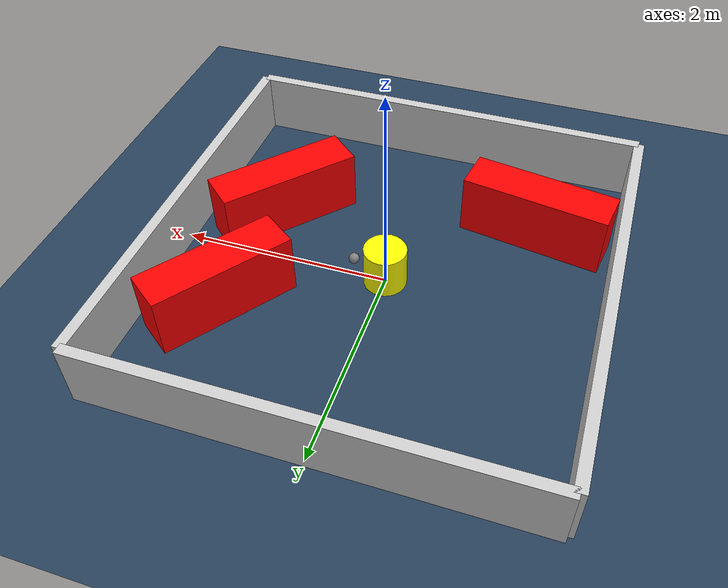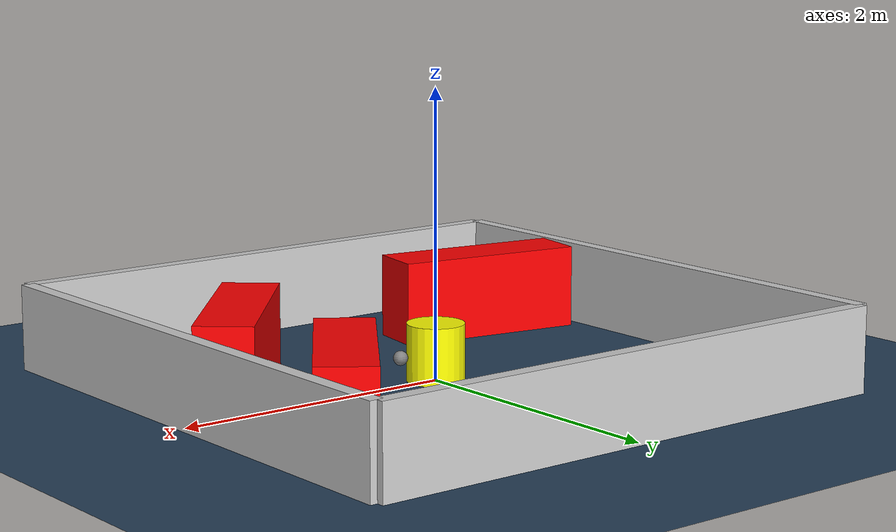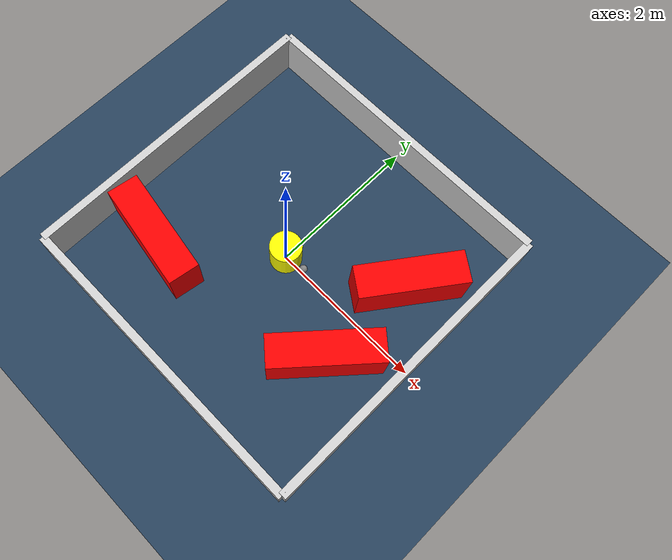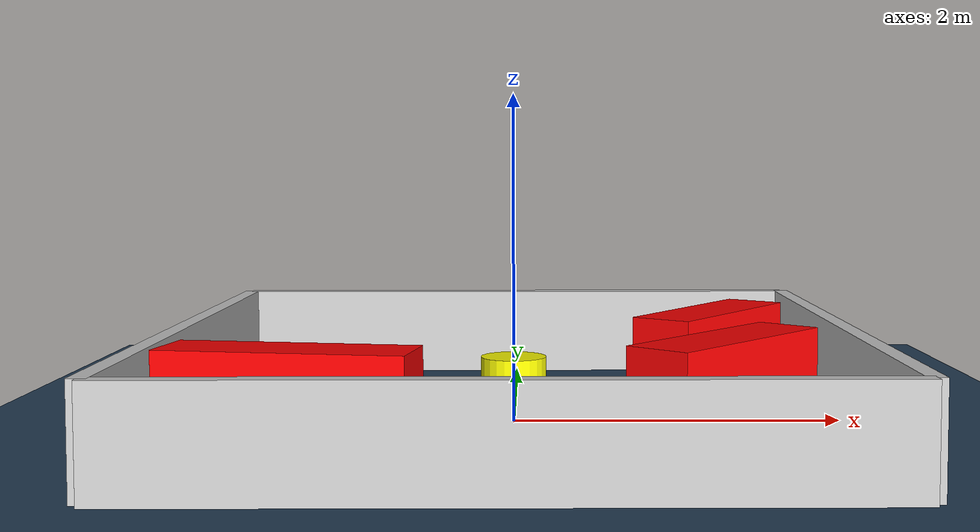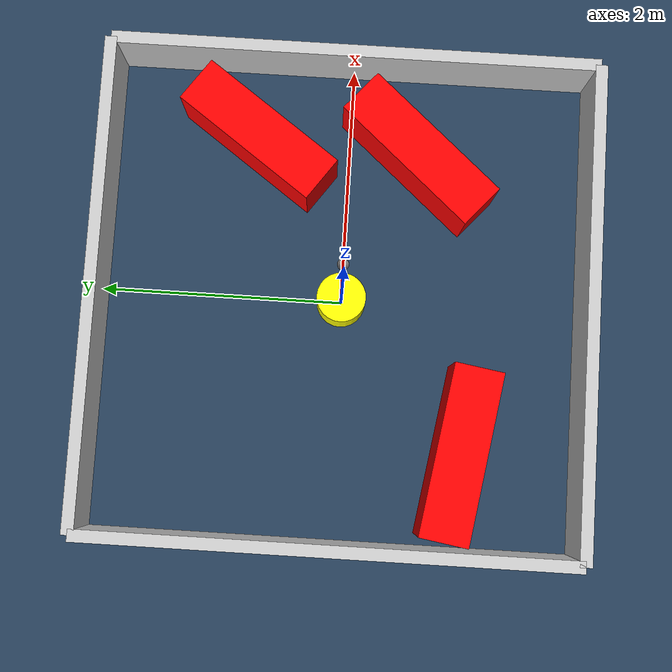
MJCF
<?xml version="1.0" ?>
<mujoco model="generated_environment">
  <option timestep="0.01" integrator="RK4" cone="elliptic"/>
  <default>
    <geom density="1"/>
  </default>
  <asset>
    <texture builtin="gradient" height="3072" rgb1="0.3 0.5 0.7" rgb2="0 0 0" type="skybox" width="512"/>
    <texture builtin="checker" height="300" mark="edge" markrgb="0.8 0.8 0.8" name="groundplane" rgb1="0.2 0.3 0.4" rgb2="0.1 0.2 0.3" type="2d" width="300"/>
    <material name="groundplane" reflectance="0.2" texrepeat="5 5" texture="groundplane" texuniform="true"/>
    <material name="robot" rgba="0.0 1.0 0.0 1"/>
  </asset>
  <worldbody>
    <light dir="0 0 -1" directional="true" pos="0 0 1.5"/>
    <geom condim="4" friction="1.0 0.005 0.001" material="groundplane" name="floor" size="0 0 0.05" type="plane"/>
    <body name="walls">
      <geom name="wall_1" condim="4" pos="-2.0 0.0 0.3" rgba="0.800000011920929 0.800000011920929 0.800000011920929 1.0" size="0.05 2.0 0.3" type="box"/>
      <geom name="wall_2" condim="4" pos="2.0 0.0 0.3" rgba="0.800000011920929 0.800000011920929 0.800000011920929 1.0" size="0.05 2.0 0.3" type="box"/>
      <geom name="wall_3" condim="4" pos="0.0 -2.0 0.3" rgba="0.800000011920929 0.800000011920929 0.800000011920929 1.0" size="2.0 0.05 0.3" type="box"/>
      <geom name="wall_4" condim="4" pos="0.0 2.0 0.3" rgba="0.800000011920929 0.800000011920929 0.800000011920929 1.0" size="2.0 0.05 0.3" type="box"/>
    </body>
    <body name="robot">
      <joint name="joint_x" type="slide" pos="0 0 0" axis="1 0 0"/>
      <joint name="joint_y" type="slide" pos="0 0 0" axis="0 1 0"/>
      <geom name="robot" type="sphere" pos="0.3 0.0 0.2" size="0.05" mass="5." friction="1.0 0.005 0.0001" condim="4" rgba="0.5 0.5 0.5 1.0"/>
      <site name="sensor_ball"/>
    </body>
    <body name="obstacle_movable_1">
      <geom name="obstacle_movable_1" condim="4" pos="0.0 0.0 0.2" euler="0 0 0.0" friction="1.0 0.005 0.001" rgba="1.0 1.0 0.0 1.0" size="0.2 0.2 0.0" type="cylinder" mass="0.1"/>
      <joint type="free"/>
    </body>
    <body name="obstacle_2_static">
      <geom name="obstacle_2_static" condim="4" pos="1.3019505646098448 0.7481417901104261 0.3" euler="0 0 234.32463457320614" friction="1.0 0.005 0.001" rgba="1 0 0 1" size="0.6598533294501473 0.2 0.3" type="box"/>
    </body>
    <body name="obstacle_3_static">
      <geom name="obstacle_3_static" condim="4" pos="1.221995760595013 -0.5688268190397845 0.3" euler="0 0 228.75655643225147" friction="1.0 0.005 0.001" rgba="1 0 0 1" size="0.6818555894472861 0.2 0.3" type="box"/>
    </body>
    <body name="obstacle_4_static">
      <geom name="obstacle_4_static" condim="4" pos="-1.1978994254659057 -1.0096946627928787 0.3" euler="0 0 170.69451909420567" friction="1.0 0.005 0.001" rgba="1 0 0 1" size="0.6947988483894509 0.2 0.3" type="box"/>
    </body>
  </worldbody>
  <actuator>
    <motor name="actuator_x" joint="joint_x" gear="1" ctrlrange="-1 1"/>
    <motor name="actuator_y" joint="joint_y" gear="1" ctrlrange="-1 1"/>
  </actuator>
</mujoco>
